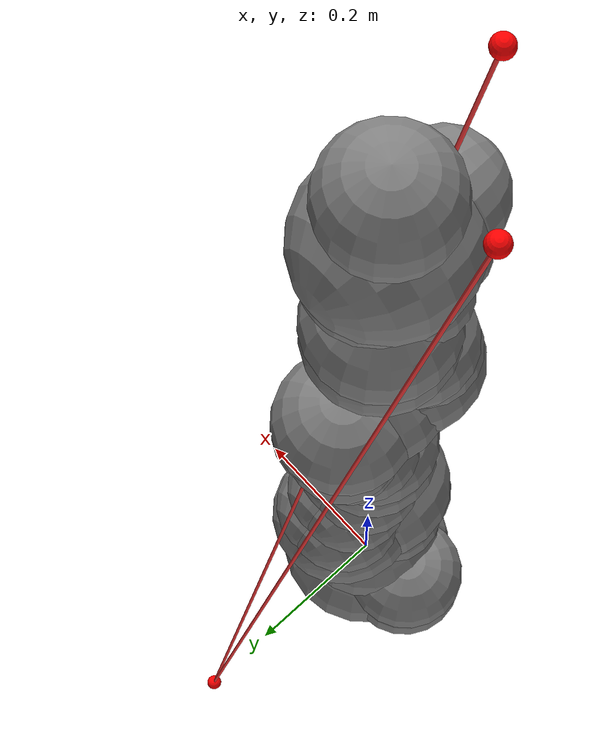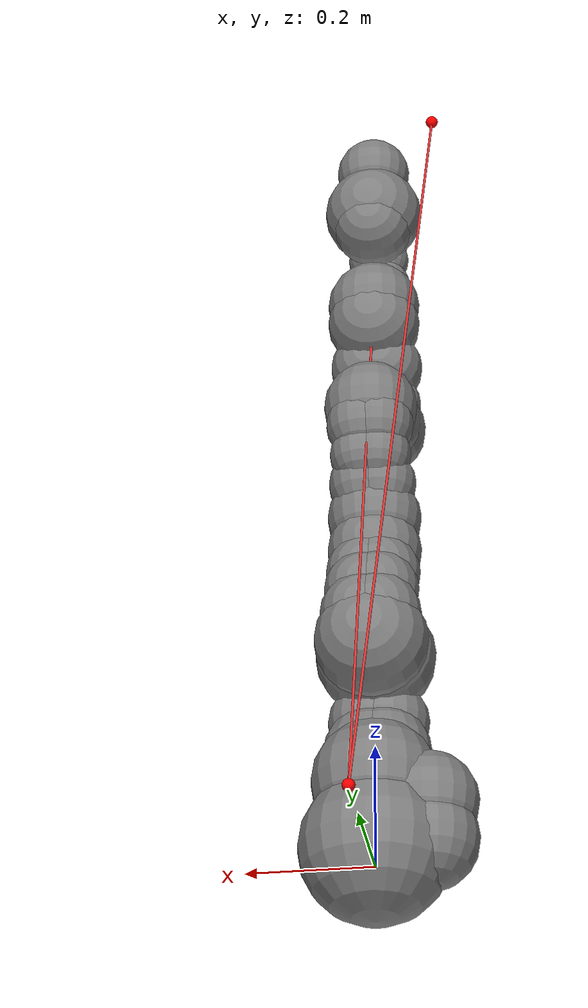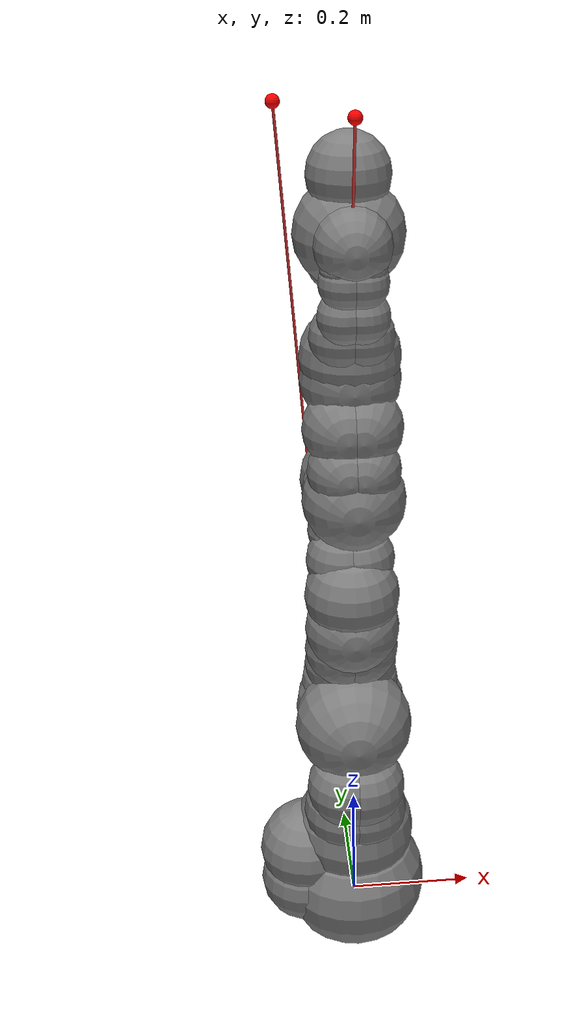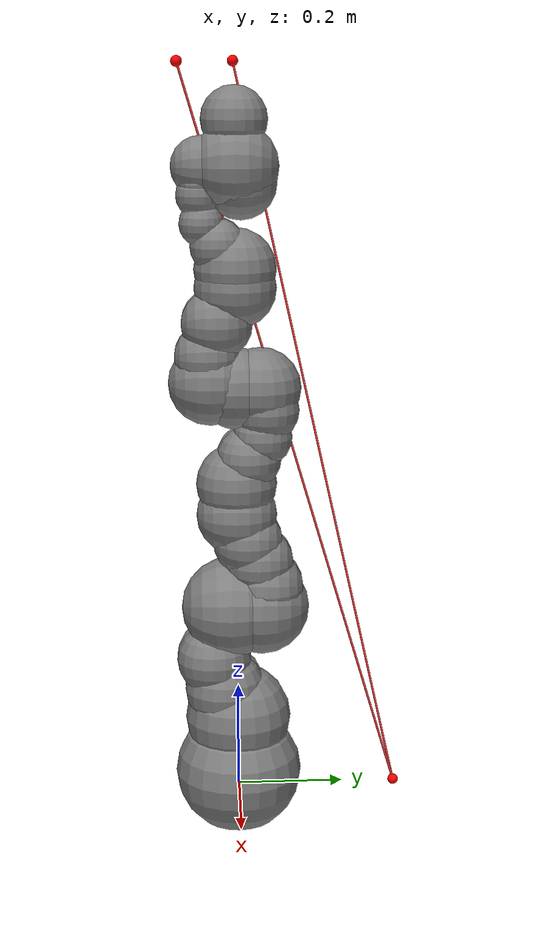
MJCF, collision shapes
<mujoco model="iiwa14">
  <compiler angle="radian" meshdir="assets" autolimits="true" />

  <option integrator="implicitfast" />

  <default>
    <default class="iiwa">
      <default class="visual">
        <geom type="mesh" contype="0" conaffinity="0" group="2" material="gray" />
      </default>
      <default class="collision">
        <geom group="3" />
      </default>
      <joint axis="0 0 1" />
      <default class="joint1">
        <joint range="-2.96706 2.96706" />
        <default class="joint2">
          <joint range="-2.0944 2.0944" />
        </default>
      </default>
      <default class="joint3">
        <joint range="-3.05433 3.05433" />
      </default>
    </default>
  </default>

  <asset>
    <material name="gray" rgba="0.4 0.4 0.4 1" />
    <material name="light_gray" rgba="0.6 0.6 0.6 1" />
    <material name="black" rgba="0 0 0 1" />
    <material name="orange" rgba="1 0.423529 0.0392157 1" />

    <mesh file="link_0.obj" />
    <mesh file="link_1.obj" />
    <mesh file="link_2_orange.obj" />
    <mesh file="link_2_grey.obj" />
    <mesh file="link_3.obj" />
    <mesh file="band.obj" />
    <mesh file="kuka.obj" />
    <mesh file="link_4_orange.obj" />
    <mesh file="link_4_grey.obj" />
    <mesh file="link_5.obj" />
    <mesh file="link_6_orange.obj" />
    <mesh file="link_6_grey.obj" />
    <mesh file="link_7.obj" />
  </asset>

  <worldbody>
    <light name="top" pos="0 0 2" mode="trackcom" />
    <body name="base" childclass="iiwa">
      <inertial mass="5" pos="-0.1 0 0.07" diaginertia="0.05 0.06 0.03" />
      <geom class="visual" mesh="link_0" />
      <geom class="collision" size="0.12" pos="0 0 0.03" />
      <geom class="collision" size="0.08" pos="-0.08 0 0.103" />
      <geom class="collision" size="0.08" pos="-0.08 0 0.04" />
      <geom class="collision" size="0.1" pos="0 0 0.14" />
      <body name="link1" pos="0 0 0.1575">
        <inertial mass="5.76" pos="0 -0.03 0.12" diaginertia="0.0333 0.033 0.0123" />
        <joint name="joint1" class="joint1" />
        <geom class="visual" mesh="link_1" />
        <geom class="collision" size="0.08" pos="0 0 -0.0005" />
        <geom class="collision" size="0.075" pos="0.01 -0.025 0.0425" />
        <geom class="collision" size="0.075" pos="-0.01 -0.025 0.0425" />
        <geom class="collision" size="0.07" pos="0.01 -0.045 0.1025" />
        <geom class="collision" size="0.07" pos="-0.01 -0.045 0.1025" />
        <body name="link2" pos="0 0 0.2025" quat="0 0 1 1">
          <inertial mass="6.35" pos="0.0003 0.059 0.042" diaginertia="0.0305 0.0304 0.011"
            quat="0 0 1 1" />
          <joint name="joint2" class="joint2" />
          <geom class="visual" material="orange" mesh="link_2_orange" />
          <geom class="visual" mesh="link_2_grey" />
          <geom class="collision" size="0.095" pos="0 0 -0.01" />
          <geom class="collision" size="0.09" pos="0 0 0.045" />
          <geom class="collision" size="0.07" pos="-0.01 0.04 0.054" />
          <geom class="collision" size="0.065" pos="-0.01 0.09 0.04" />
          <geom class="collision" size="0.065" pos="-0.01 0.13 0.02" />
          <geom class="collision" size="0.07" pos="0.01 0.04 0.054" />
          <geom class="collision" size="0.065" pos="0.01 0.09 0.04" />
          <geom class="collision" size="0.065" pos="0.01 0.13 0.02" />
          <geom class="collision" size="0.075" pos="0 0.18 0" />
          <body name="link3" pos="0 0.2045 0" quat="0 0 1 1">
            <inertial mass="3.5" pos="0 0.03 0.13" diaginertia="0.025 0.0238 0.0076" />
            <joint name="joint3" class="joint1" />
            <geom class="visual" mesh="link_3" />
            <geom class="visual" material="light_gray" mesh="band" />
            <geom class="visual" material="black" mesh="kuka" />
            <geom class="collision" size="0.075" pos="0 0 0.0355" />
            <geom class="collision" size="0.06" pos="0.01 0.023 0.0855" />
            <geom class="collision" size="0.055" pos="0.01 0.048 0.1255" />
            <geom class="collision" size="0.06" pos="0.01 0.056 0.1755" />
            <geom class="collision" size="0.06" pos="-0.01 0.023 0.0855" />
            <geom class="collision" size="0.055" pos="-0.01 0.048 0.1255" />
            <geom class="collision" size="0.06" pos="-0.01 0.056 0.1755" />
            <geom class="collision" size="0.075" pos="0 0.045 0.2155" />
            <geom class="collision" size="0.075" pos="0 0 0.2155" />
            <body name="link4" pos="0 0 0.2155" quat="1 1 0 0">
              <inertial mass="3.5" pos="0 0.067 0.034" diaginertia="0.017 0.0164 0.006"
                quat="1 1 0 0" />
              <joint name="joint4" class="joint2" />
              <geom class="visual" material="orange" mesh="link_4_orange" />
              <geom class="visual" mesh="link_4_grey" />
              <geom class="collision" size="0.078" pos="0 0.01 0.046" />
              <geom class="collision" size="0.06" pos="0.01 0.06 0.052" />
              <geom class="collision" size="0.065" pos="0.01 0.12 0.034" />
              <geom class="collision" size="0.06" pos="-0.01 0.06 0.052" />
              <geom class="collision" size="0.065" pos="-0.01 0.12 0.034" />
              <geom class="collision" size="0.075" pos="0 0.184 0" />
              <body name="link5" pos="0 0.1845 0" quat="0 0 1 1">
                <inertial mass="3.5" pos="0.0001 0.021 0.076" diaginertia="0.01 0.0087 0.00449" />
                <joint name="joint5" class="joint1" />
                <geom class="visual" mesh="link_5" />
                <geom class="visual" material="light_gray" mesh="band" />
                <geom class="visual" material="black" mesh="kuka" />
                <geom class="collision" size="0.075" pos="0 0 0.0335" />
                <geom class="collision" size="0.05" pos="-0.012 0.031 0.0755" />
                <geom class="collision" size="0.05" pos="0.012 0.031 0.0755" />
                <geom class="collision" size="0.04" pos="-0.012 0.06 0.1155" />
                <geom class="collision" size="0.04" pos="0.012 0.06 0.1155" />
                <geom class="collision" size="0.04" pos="-0.01 0.065 0.1655" />
                <geom class="collision" size="0.04" pos="0.01 0.065 0.1655" />
                <geom class="collision" size="0.035" pos="-0.012 0.065 0.1855" />
                <geom class="collision" size="0.035" pos="0.012 0.065 0.1855" />
                <body name="link6" pos="0 0 0.2155" quat="1 1 0 0">
                  <inertial mass="1.8" pos="0 0.0006 0.0004" diaginertia="0.0049 0.0047 0.0036"
                    quat="1 1 0 0" />
                  <joint name="joint6" class="joint2" />
                  <geom class="visual" material="orange" mesh="link_6_orange" />
                  <geom class="visual" mesh="link_6_grey" />
                  <geom class="collision" size="0.055" pos="0 0 -0.059" />
                  <geom class="collision" size="0.065" pos="0 -0.03 0.011" />
                  <geom class="collision" size="0.08" />
                  <body name="link7" pos="0 0.081 0" quat="0 0 1 1">
                    <inertial mass="1.2" pos="0 0 0.02" diaginertia="0.001 0.001 0.001" />
                    <joint name="joint7" class="joint3" />
                    <geom class="visual" mesh="link_7" />
                    <geom class="collision" size="0.06" pos="0 0 0.001" />

                    <site name="attachment_site" rgba="1 0 0 1" size="0.01" group="1" />

                    <body name="attachment" pos="0 0 0.1" quat="0 0 0 1">

                      <body name="dummy body" pos="0 0 0.0">

                        <inertial pos="0 0 0" mass="0.0001" diaginertia="0 0 0" />

                        <site name="site1" rgba="1 0 0 1" size="0.01" group="1" pos="0 0.1 0" />
                        <site name="site2" rgba="1 0 0 1" size="0.01" group="1" pos="0.1 0 0" />

                      </body>
                    </body>
                  </body>
                </body>
              </body>
            </body>
          </body>
        </body>
      </body>
    </body>
    <site name="base" rgba="1 0 0 1" size="0.01" group="1" pos="0 .3 0" />
  </worldbody>

  <tendon>
    <spatial name="dMCL" stiffness="100.0" damping="20" springlength="0.0"
      width="0.002" rgba="0.9 0.2 0.2 0.9">
      <site site="site1" />
      <site site="base" />
    </spatial>
    <spatial name="dMCL2" stiffness="100.0" damping="20" springlength="0.0"
      width="0.002" rgba="0.9 0.2 0.2 0.9">
      <site site="site2" />
      <site site="base" />
    </spatial>
  </tendon>

  <sensor>
    <!-- Attach the sensors to the end-effector site -->
    <force name="force_eff" site="attachment_site" />
    <torque name="torque_eff" site="attachment_site" />
  </sensor>

  <contact>
    <exclude body1="base" body2="link1" />
    <exclude body1="base" body2="link2" />
    <exclude body1="base" body2="link3" />
    <exclude body1="link1" body2="link3" />
    <exclude body1="link3" body2="link5" />
    <exclude body1="link4" body2="link7" />
    <exclude body1="link5" body2="link7" />
  </contact>

  <actuator>
    <motor name="joint1" joint="joint1" ctrlrange="-320 320" />
    <motor name="joint2" joint="joint2" ctrlrange="-320 320" />
    <motor name="joint3" joint="joint3" ctrlrange="-176 176" />
    <motor name="joint4" joint="joint4" ctrlrange="-176 176" />
    <motor name="joint5" joint="joint5" ctrlrange="-110 110" />
    <motor name="joint6" joint="joint6" ctrlrange="-40 40" />
    <motor name="joint7" joint="joint7" ctrlrange="-40 40" />
  </actuator>

  <keyframe>
    <key name="home" qpos="0 0 0 -1.5708 0 1.5708 0" />
  </keyframe>
</mujoco>
